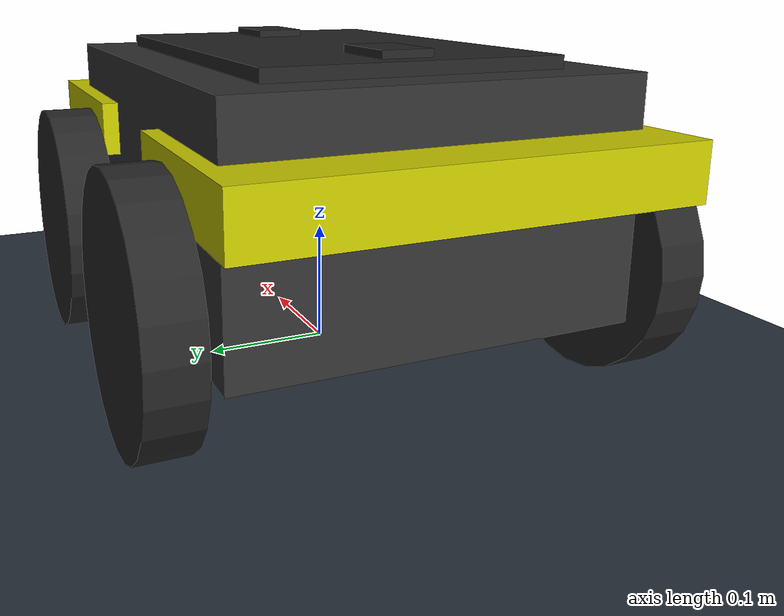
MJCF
<mujoco model="jackal_scene_mjx_flat_terrain">
  <compiler angle="radian" autolimits="true"/>
  <option timestep="0.004" gravity="0 0 -9.81" integrator="implicitfast"/>

  <default>
    <joint damping="0.2" armature="0.02"/>
    <geom condim="6" friction="0.9 0.02 0.01" solimp="0.95 0.99 0.001" solref="0.004 1"/>
    <motor ctrllimited="true" ctrlrange="-1 1"/>
  </default>

  <visual>
    <headlight diffuse="0.6 0.6 0.6" ambient="0.25 0.25 0.25" specular="0.1 0.1 0.1"/>
    <rgba haze="0.15 0.25 0.35 1"/>
    <global offwidth="1920" offheight="1080"/>
  </visual>

  <asset>
    <texture name="groundplane" type="2d" builtin="checker" rgb1="0.20 0.24 0.28" rgb2="0.13 0.16 0.19" width="512" height="512"/>
    <material name="groundplane" texture="groundplane" texrepeat="8 8" texuniform="true" reflectance="0.1"/>
    <material name="dark_grey" rgba="0.20 0.20 0.20 1"/>
    <material name="light_grey" rgba="0.40 0.40 0.40 1"/>
    <material name="yellow" rgba="0.80 0.80 0.00 1"/>
    <material name="black" rgba="0.15 0.15 0.15 1"/>
  </asset>

  <worldbody>
    <light pos="0 0 3" dir="0 0 -1" directional="true"/>
    <geom name="floor" type="plane" size="0 0 0.05" material="groundplane"/>

    <body name="base_link" pos="0 0 0.0635">
      <freejoint/>
      <camera name="track" pos="-1.8 0 1.0" xyaxes="0 -1 0 0.4 0 1"/>

      <body name="chassis_link">
        <inertial pos="0.012 0.002 0.067" mass="16.523" diaginertia="0.3136 0.3922 0.4485"/>

        <geom name="chassis_collision" type="box" pos="0 0 0.092" size="0.21 0.155 0.092" material="dark_grey"/>
        <geom name="chassis_visual" type="box" pos="0 0 0.092" size="0.205 0.15 0.088" material="light_grey"/>

        <body name="front_left_wheel_link" pos="0.131 0.187795 0.0345">
          <joint name="front_left_wheel_joint" type="hinge" axis="0 1 0" damping="0.4"/>
          <geom name="front_left_wheel" type="cylinder" size="0.098 0.02" quat="0.7071068 0.7071068 0 0" material="black"/>
        </body>
        <body name="front_right_wheel_link" pos="0.131 -0.187795 0.0345">
          <joint name="front_right_wheel_joint" type="hinge" axis="0 1 0" damping="0.4"/>
          <geom name="front_right_wheel" type="cylinder" size="0.098 0.02" quat="0.7071068 0.7071068 0 0" material="black"/>
        </body>
        <body name="rear_left_wheel_link" pos="-0.131 0.187795 0.0345">
          <joint name="rear_left_wheel_joint" type="hinge" axis="0 1 0" damping="0.4"/>
          <geom name="rear_left_wheel" type="cylinder" size="0.098 0.02" quat="0.7071068 0.7071068 0 0" material="black"/>
        </body>
        <body name="rear_right_wheel_link" pos="-0.131 -0.187795 0.0345">
          <joint name="rear_right_wheel_joint" type="hinge" axis="0 1 0" damping="0.4"/>
          <geom name="rear_right_wheel" type="cylinder" size="0.098 0.02" quat="0.7071068 0.7071068 0 0" material="black"/>
        </body>

        <geom name="front_fender" type="box" pos="0.166 0 0.122" size="0.094 0.168 0.022" material="yellow"/>
        <geom name="rear_fender" type="box" pos="-0.166 0 0.122" size="0.094 0.168 0.022" material="yellow"/>
        <geom name="top_plate" type="box" pos="0 0 0.184" size="0.17 0.115 0.01" material="black"/>
        <geom name="front_mount_geom" type="box" pos="0.12 0 0.192" size="0.03 0.02 0.008" material="black"/>
        <geom name="rear_mount_geom" type="box" pos="-0.12 0 0.192" size="0.03 0.02 0.008" material="black"/>

        <body name="imu_link" pos="0 0 0.1815">
          <site name="imu" pos="0 0 0" size="0.008"/>
        </body>
      </body>
    </body>
  </worldbody>

  <sensor>
    <gyro name="imu_gyro" site="imu"/>
    <accelerometer name="imu_accel" site="imu"/>
    <framequat name="base_link_quat" objtype="body" objname="base_link"/>
    <subtreelinvel name="base_link_subtreelinvel" body="base_link"/>
    <framequat name="torso_quat" objtype="body" objname="base_link"/>
    <subtreelinvel name="torso_subtreelinvel" body="base_link"/>
  </sensor>

  <actuator>
    <motor name="front_left_motor" joint="front_left_wheel_joint" gear="20"/>
    <motor name="front_right_motor" joint="front_right_wheel_joint" gear="20"/>
    <motor name="rear_left_motor" joint="rear_left_wheel_joint" gear="20"/>
    <motor name="rear_right_motor" joint="rear_right_wheel_joint" gear="20"/>
  </actuator>
</mujoco>
